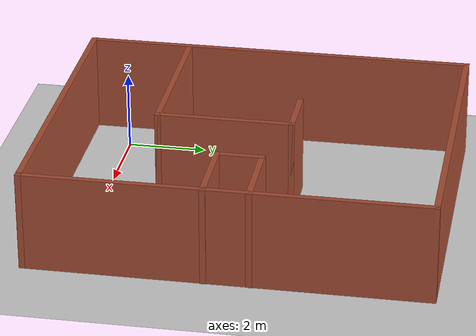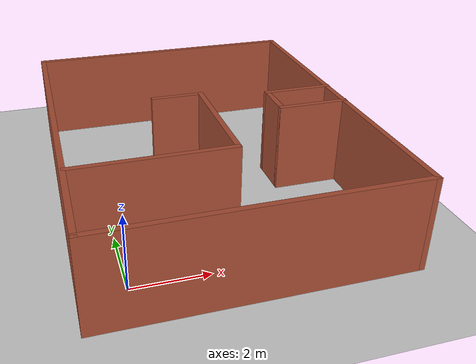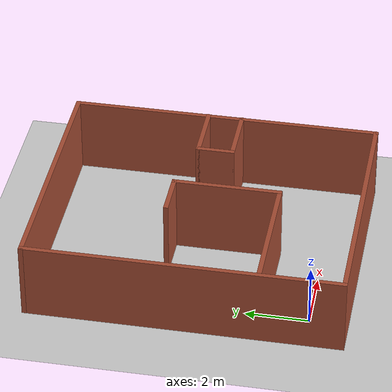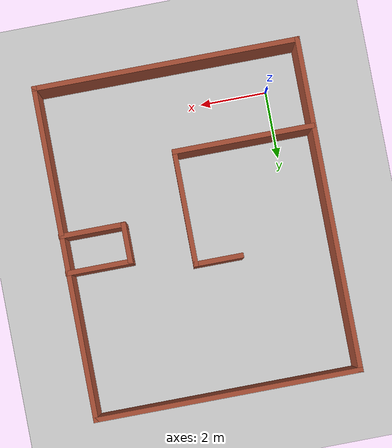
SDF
<sdf version="1.6">
 <world name="default">
  <light name="sun" type="directional">
   <pose>0 0 10 0 -0 0</pose>
   <diffuse>0.8 0.8 0.8 1</diffuse>
   <specular>0.2 0.2 0.2 1</specular>
   <attenuation>
    <range>1000</range>
    <constant>0.9</constant>
    <linear>0.01</linear>
    <quadratic>0.001</quadratic>
   </attenuation>
   <direction>-0.5 0.1 -0.9</direction>
  </light>
  <model name="ground_plane">
   <static>1</static>
   <link name="link">
    <collision name="collision">
     <geometry><plane><normal>0 0 1</normal><size>100 100</size></plane></geometry>
     <surface><friction><ode><mu>100</mu><mu2>50</mu2></ode></friction></surface>
    </collision>
    <visual name="visual">
     <cast_shadows>0</cast_shadows>
     <geometry><plane><normal>0 0 1</normal><size>100 100</size></plane></geometry>
     <material>
      <script><uri>file://media/materials/scripts/gazebo.material</uri><name>Gazebo/Grey</name></script>
     </material>
    </visual>
   </link>
  </model>
  <gravity>0 0 -9.8</gravity>
  <magnetic_field>6e-06 2.3e-05 -4.2e-05</magnetic_field>
  <atmosphere type="adiabatic"/>
  <physics name="default_physics" default="0" type="ode">
   <max_step_size>0.001</max_step_size>
   <real_time_factor>1</real_time_factor>
   <real_time_update_rate>1000</real_time_update_rate>
  </physics>
  <scene><ambient>0.4 0.4 0.4 1</ambient><background>0.7 0.7 0.7 1</background><shadows>1</shadows></scene>
  <audio><device>default</device></audio>
  <spherical_coordinates>
   <surface_model>EARTH_WGS84</surface_model>
   <latitude_deg>0</latitude_deg>
   <longitude_deg>0</longitude_deg>
   <elevation>0</elevation>
   <heading_deg>0</heading_deg>
  </spherical_coordinates>
  <model name="CASA1">
   <pose>2.84559 3.77264 0 0 -0 1.56986</pose>
   <link name="Wall_0">
    <collision name="Wall_0_Collision">
     <geometry><box><size>10 0.15 2.5</size></box></geometry>
     <pose>0 0 1.25 0 -0 0</pose>
    </collision>
    <visual name="Wall_0_Visual">
     <pose>0 0 1.25 0 -0 0</pose>
     <geometry><box><size>10 0.15 2.5</size></box></geometry>
     <material>
      <script><uri>file://media/materials/scripts/gazebo.material</uri><name>Gazebo/Bricks</name></script>
      <ambient>1 1 1 1</ambient>
     </material>
     <meta><layer>0</layer></meta>
    </visual>
    <pose>0 3.93208 0 0 -0 0</pose>
   </link>
   <link name="Wall_13">
    <collision name="Wall_13_Collision">
     <geometry><box><size>2 0.15 2.5</size></box></geometry>
     <pose>0 0 1.25 0 -0 0</pose>
    </collision>
    <visual name="Wall_13_Visual">
     <pose>0 0 1.25 0 -0 0</pose>
     <geometry><box><size>2 0.15 2.5</size></box></geometry>
     <material>
      <script><uri>file://media/materials/scripts/gazebo.material</uri><name>Gazebo/Bricks</name></script>
      <ambient>1 1 1 1</ambient>
     </material>
     <meta><layer>0</layer></meta>
    </visual>
    <pose>-0.526536 -3.00708 0 0 -0 1.5708</pose>
   </link>
   <link name="Wall_14">
    <collision name="Wall_14_Collision">
     <geometry><box><size>1.25 0.15 2.5</size></box></geometry>
     <pose>0 0 1.25 0 -0 0</pose>
    </collision>
    <visual name="Wall_14_Visual">
     <pose>0 0 1.25 0 -0 0</pose>
     <geometry><box><size>1.25 0.15 2.5</size></box></geometry>
     <material>
      <script><uri>file://media/materials/scripts/gazebo.material</uri><name>Gazebo/Bricks</name></script>
      <ambient>1 1 1 1</ambient>
     </material>
     <meta><layer>0</layer></meta>
    </visual>
    <pose>0.023464 -2.08208 0 0 -0 0</pose>
   </link>
   <link name="Wall_15">
    <collision name="Wall_15_Collision">
     <geometry><box><size>2 0.15 2.5</size></box></geometry>
     <pose>0 0 1.25 0 -0 0</pose>
    </collision>
    <visual name="Wall_15_Visual">
     <pose>0 0 1.25 0 -0 0</pose>
     <geometry><box><size>2 0.15 2.5</size></box></geometry>
     <material>
      <script><uri>file://media/materials/scripts/gazebo.material</uri><name>Gazebo/Bricks</name></script>
      <ambient>1 1 1 1</ambient>
     </material>
     <meta><layer>0</layer></meta>
    </visual>
    <pose>0.573464 -3.00708 0 0 -0 -1.5708</pose>
   </link>
   <link name="Wall_2">
    <collision name="Wall_2_Collision">
     <geometry><box><size>8 0.15 2.5</size></box></geometry>
     <pose>0 0 1.25 0 -0 0</pose>
    </collision>
    <visual name="Wall_2_Visual">
     <pose>0 0 1.25 0 -0 0</pose>
     <geometry><box><size>8 0.15 2.5</size></box></geometry>
     <material>
      <script><uri>file://media/materials/scripts/gazebo.material</uri><name>Gazebo/Bricks</name></script>
      <ambient>1 1 1 1</ambient>
     </material>
     <meta><layer>0</layer></meta>
    </visual>
    <pose>4.925 0.00708 0 0 -0 -1.5708</pose>
   </link>
   <link name="Wall_3">
    <collision name="Wall_3_Collision">
     <geometry><box><size>10 0.15 2.5</size></box></geometry>
     <pose>0 0 1.25 0 -0 0</pose>
    </collision>
    <visual name="Wall_3_Visual">
     <pose>0 0 1.25 0 -0 0</pose>
     <geometry><box><size>10 0.15 2.5</size></box></geometry>
     <material>
      <script><uri>file://media/materials/scripts/gazebo.material</uri><name>Gazebo/Bricks</name></script>
      <ambient>1 1 1 1</ambient>
     </material>
     <meta><layer>0</layer></meta>
    </visual>
    <pose>0 -3.91792 0 0 -0 3.14159</pose>
   </link>
   <link name="Wall_4">
    <collision name="Wall_4_Collision">
     <geometry><box><size>8 0.15 2.5</size></box></geometry>
     <pose>0 0 1.25 0 -0 0</pose>
    </collision>
    <visual name="Wall_4_Visual">
     <pose>0 0 1.25 0 -0 0</pose>
     <geometry><box><size>8 0.15 2.5</size></box></geometry>
     <material>
      <script><uri>file://media/materials/scripts/gazebo.material</uri><name>Gazebo/Bricks</name></script>
      <ambient>1 1 1 1</ambient>
     </material>
     <meta><layer>0</layer></meta>
    </visual>
    <pose>-4.925 0.00708 0 0 -0 1.5708</pose>
   </link>
   <link name="Wall_6">
    <collision name="Wall_6_Collision">
     <geometry><box><size>4.25 0.15 2.5</size></box></geometry>
     <pose>0 0 1.25 0 -0 0</pose>
    </collision>
    <visual name="Wall_6_Visual">
     <pose>0 0 1.25 0 -0 0</pose>
     <geometry><box><size>4.25 0.15 2.5</size></box></geometry>
     <material>
      <script><uri>file://media/materials/scripts/gazebo.material</uri><name>Gazebo/Bricks</name></script>
      <ambient>1 1 1 1</ambient>
     </material>
     <meta><layer>0</layer></meta>
    </visual>
    <pose>-2.34488 1.83122 0 0 -0 -1.5708</pose>
   </link>
   <link name="Wall_7">
    <collision name="Wall_7_Collision">
     <geometry><box><size>3.5 0.15 2.5</size></box></geometry>
     <pose>0 0 1.25 0 -0 0</pose>
    </collision>
    <visual name="Wall_7_Visual">
     <pose>0 0 1.25 0 -0 0</pose>
     <geometry><box><size>3.5 0.15 2.5</size></box></geometry>
     <material>
      <script><uri>file://media/materials/scripts/gazebo.material</uri><name>Gazebo/Bricks</name></script>
      <ambient>1 1 1 1</ambient>
     </material>
     <meta><layer>0</layer></meta>
    </visual>
    <pose>-0.669875 -0.21878 0 0 -0 0</pose>
   </link>
   <link name="Wall_8">
    <collision name="Wall_8_Collision">
     <geometry><box><size>1.5 0.15 2.5</size></box></geometry>
     <pose>0 0 1.25 0 -0 0</pose>
    </collision>
    <visual name="Wall_8_Visual">
     <pose>0 0 1.25 0 -0 0</pose>
     <geometry><box><size>1.5 0.15 2.5</size></box></geometry>
     <material>
      <script><uri>file://media/materials/scripts/gazebo.material</uri><name>Gazebo/Bricks</name></script>
      <ambient>1 1 1 1</ambient>
     </material>
     <meta><layer>0</layer></meta>
    </visual>
    <pose>1.00513 0.45622 0 0 -0 1.5708</pose>
   </link>
   <static>1</static>
  </model>
 </world>
</sdf>
